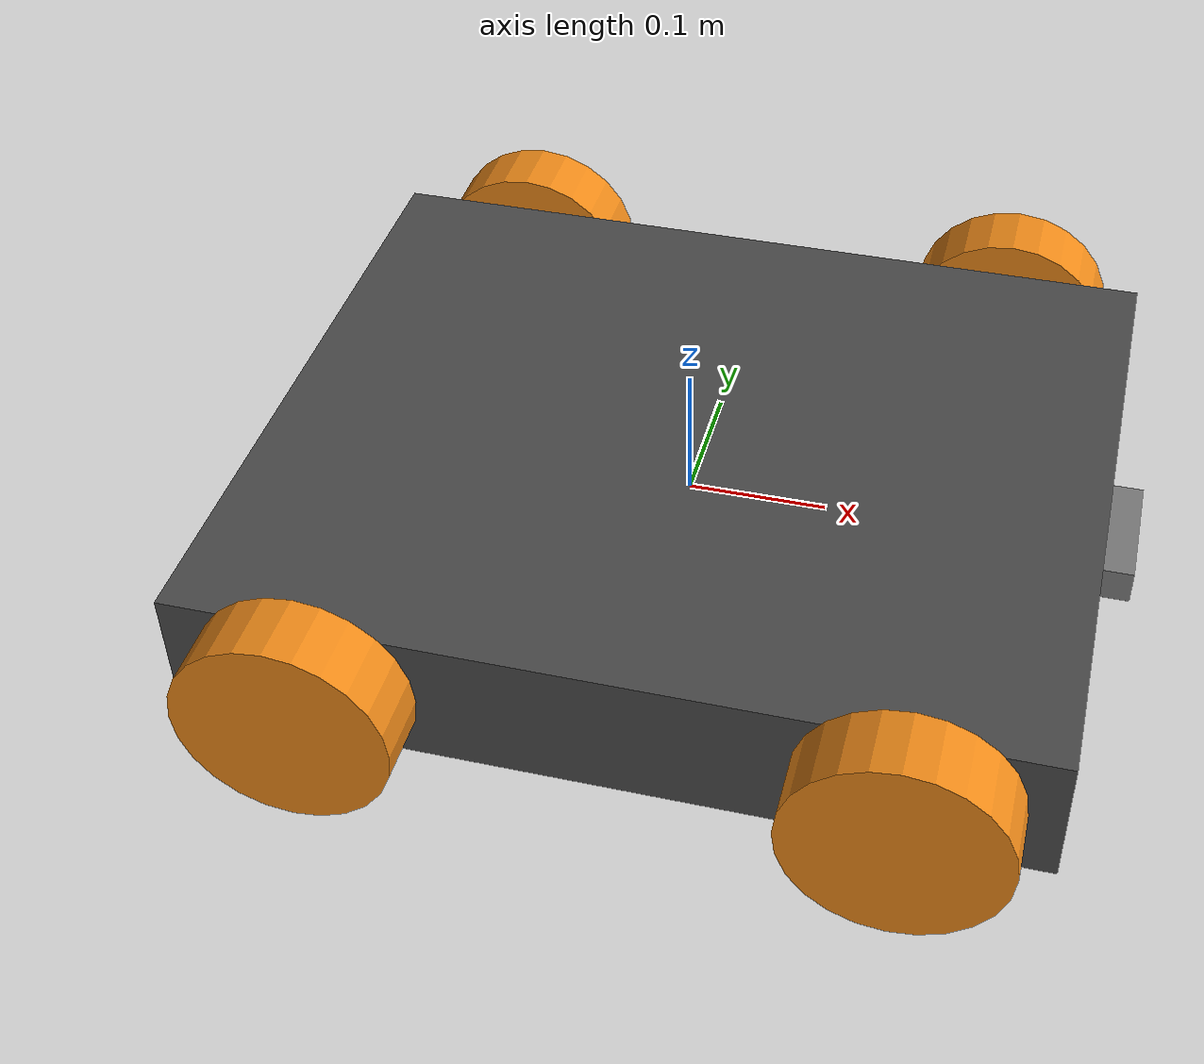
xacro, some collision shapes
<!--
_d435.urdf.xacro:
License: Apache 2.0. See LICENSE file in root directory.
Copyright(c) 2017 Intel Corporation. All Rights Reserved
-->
<?xml version='1.0'?>
<robot name="mobile_robot" xmlns:xacro="http://www.ros.org/wiki/xacro">
  <xacro:include filename="$(find test_mobile_robot)/urdf/mobile_robot.gazebo"/>
  <xacro:include filename="$(find test_mobile_robot)/urdf/common_properties.urdf.xacro"/>
  <xacro:include filename="$(find camera_simulator)/urdf/_d435.urdf.xacro"/>

  <xacro:arg name="gpu" default="false"/>
  <xacro:property name="gpu" value="$(arg gpu)" />

  <xacro:property name="M_PI" value="3.1415926535897932384626433832795028841971"/>

  <!-- Chassis Info -->
  <xacro:property name="chassis_mass" value="10"/>

  <xacro:property name="chassis_width" value="0.5"/>
  <xacro:property name="chassis_depth" value="0.6"/>
  <xacro:property name="chassis_height" value="0.1"/>

  <!-- Wheel Info -->
  <xacro:property name="wheel_mass" value="0.5"/>

  <xacro:property name="wheel_radius" value="0.076"/>
  <xacro:property name="wheel_length" value="0.050"/>
  <xacro:property name="joint_x" value="0.2"/>
  <xacro:property name="joint_y" value="0.275"/>

<!-- Camera Joint Info-->

  <xacro:property name="joint_x_cam" value="0.31"/>
  <xacro:property name="joint_y_cam" value="0"/>
  <xacro:property name="joint_z_cam" value="0.0"/>

  <!-- 1. Base Footprint-->

  <link name="base_footprint"/>

  <!--2. Base link-->

  <link name="base_link">
    <inertial>
      <origin xyz="0.0 0.0 0.0" rpy="0.0 0.0 0.0"/>

      <mass value="${chassis_mass}"/>
      <inertia ixx="10.0" ixy="0.0" ixz="0.0" iyy="10.0" iyz="0.0" izz="10.0"/>
    </inertial>

      <visual>
        <origin xyz="0.0 0.0 0.0" rpy="0.0 0.0 0.0"/>
        <geometry>
          <box size="${chassis_depth} ${chassis_width} ${chassis_height}"/>
        </geometry>
      </visual>

      <collision>
        <origin xyz="0.0 0.0 0.0" rpy="0.0 0.0 0.0"/>
        <geometry>
          <box size="${chassis_depth} ${chassis_width} ${chassis_height}"/>
        </geometry>
      </collision>

  </link>

  <joint name="base_joint" type="fixed">
    <origin xyz="0.0 0.0 0.0" rpy="0.0 0.0 0.0"/>
    <parent link="base_footprint"/>
    <child link="base_link"/>
    <origin xyz="0.0 0.0 0.05" rpy="0.0 0.0 0.0"/>
  </joint>

  <!-- 3. FL wheel -->

  <link name="fl_wheel">
    <inertial>
      <origin xyz="0.0 0.0 0.0" rpy="0.0 0.0 0.0"/>
      <mass value="${wheel_mass}"/>
      <inertia ixx="0.1" ixy="0.0" ixz="0.0" iyy="0.1" iyz="0.0" izz="0.1"/>
    </inertial>

    <visual>
      <origin xyz="0.0 0.0 0.0" rpy="0.0 0.0 0.0"/>
      <geometry>
        <cylinder radius="${wheel_radius}" length="${wheel_length}"/>
      </geometry>
    </visual>

    <collision>
      <origin xyz="0.0 0.0 0.0" rpy="0.0 0.0 0.0"/>
      <geometry>
        <cylinder radius="${wheel_radius}" length="${wheel_length}"/>
      </geometry>
    </collision>
  </link>

  <joint name="fl_joint" type="fixed">
    <origin xyz="${joint_x} ${-joint_y} 0.0" rpy="${M_PI/2} 0.0 0.0"/>
    <parent link="base_link"/>
    <child link="fl_wheel"/>
    <axis xyz="0.0 1.0 0.0"/>
  </joint>

  <!-- 4. FR wheel -->

  <link name="fr_wheel">
    <inertial>
      <origin xyz="0.0 0.0 0.0" rpy="0.0 0.0 0.0"/>
      <mass value="${wheel_mass}"/>
      <inertia ixx="0.1" ixy="0.0" ixz="0.0" iyy="0.1" iyz="0.0" izz="0.1"/>
    </inertial>

    <visual>
      <origin xyz="0.0 0.0 0.0" rpy="0.0 0.0 0.0"/>
      <geometry>
        <cylinder radius="${wheel_radius}" length="${wheel_length}"/>
      </geometry>
    </visual>

    <collision>
      <origin xyz="0.0 0.0 0.0" rpy="0.0 0.0 0.0"/>
      <geometry>
        <cylinder radius="${wheel_radius}" length="${wheel_length}"/>
      </geometry>
    </collision>
  </link>

  <joint name="fr_joint" type="fixed">
    <origin xyz="${joint_x} ${joint_y} 0.0" rpy="${M_PI/2} 0.0 0.0"/>
    <parent link="base_link"/>
    <child link="fr_wheel"/>
    <axis xyz="0.0 1.0 0.0"/>
  </joint>

  <!-- 5. BR wheel -->

  <link name="br_wheel">
    <inertial>
      <origin xyz="0.0 0.0 0.0" rpy="0.0 0.0 0.0"/>
      <mass value="${wheel_mass}"/>
      <inertia ixx="0.1" ixy="0.0" ixz="0.0" iyy="0.1" iyz="0.0" izz="0.1"/>
    </inertial>

    <visual>
      <origin xyz="0.0 0.0 0.0" rpy="0.0 0.0 0.0"/>
      <geometry>
        <cylinder radius="${wheel_radius}" length="${wheel_length}"/>
      </geometry>
    </visual>

    <collision>
      <origin xyz="0.0 0.0 0.0" rpy="0.0 0.0 0.0"/>
      <geometry>
        <cylinder radius="${wheel_radius}" length="${wheel_length}"/>
      </geometry>
    </collision>
  </link>

  <joint name="br_joint" type="fixed">
    <origin xyz="${-joint_x} ${joint_y} 0.0" rpy="${M_PI/2} 0.0 0.0"/>
    <parent link="base_link"/>
    <child link="br_wheel"/>
    <axis xyz="0.0 1.0 0.0"/>
  </joint>

  <!-- 6. BL wheel -->

  <link name="bl_wheel">
    <inertial>
      <origin xyz="0.0 0.0 0.0" rpy="0.0 0.0 0.0"/>
      <mass value="${wheel_mass}"/>
      <inertia ixx="0.1" ixy="0.0" ixz="0.0" iyy="0.1" iyz="0.0" izz="0.1"/>
    </inertial>

    <visual>
      <origin xyz="0.0 0.0 0.0" rpy="0.0 0.0 0.0"/>
      <geometry>
        <cylinder radius="${wheel_radius}" length="${wheel_length}"/>
      </geometry>
    </visual>

    <collision>
      <origin xyz="0.0 0.0 0.0" rpy="0.0 0.0 0.0"/>
      <geometry>
        <cylinder radius="${wheel_radius}" length="${wheel_length}"/>
      </geometry>
    </collision>
  </link>

  <joint name="bl_joint" type="fixed">
    <origin xyz="${-joint_x} ${-joint_y} 0.0" rpy="${M_PI/2} 0.0 0.0"/>
    <parent link="base_link"/>
    <child link="bl_wheel"/>
    <axis xyz="0.0 1.0 0.0"/>
  </joint>

  <xacro:sensor_d435 parent="base_link">
    <origin xyz="${joint_x_cam} ${joint_y_cam} ${joint_z_cam}" rpy="0.0 0.0 0.0"/>
  </xacro:sensor_d435>

</robot>

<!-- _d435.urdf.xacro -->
<robot name="sensor_d435" xmlns:xacro="http://ros.org/wiki/xacro">
  <!--File includes-->
  <xacro:include filename="$(find camera_simulator)/urdf/_d435.gazebo.xacro"/>
  <xacro:macro name="sensor_d435" params="name:=camera topics_ns:=camera parent *origin">
    <xacro:property name="M_PI" value="3.1415926535897931" />

    <!-- The following values are approximate, and the camera node
     publishing TF values with actual calibrated camera extrinsic values -->
    <xacro:property name="d435_cam_depth_to_left_ir_offset" value="0.0"/>
    <xacro:property name="d435_cam_depth_to_right_ir_offset" value="-0.050"/>
    <xacro:property name="d435_cam_depth_to_color_offset" value="0.015"/>

    <!-- The following values model the aluminum peripherial case for the
  	D435 camera, with the camera joint represented by the actual
  	peripherial camera tripod mount -->
    <xacro:property name="d435_cam_width" value="0.090"/>
    <xacro:property name="d435_cam_height" value="0.025"/>
    <xacro:property name="d435_cam_depth" value="0.02505"/>
    <xacro:property name="d435_cam_mount_from_center_offset" value="0.0149"/>

    <!-- The following offset is relative the the physical D435 camera peripherial
  	camera tripod mount -->
    <xacro:property name="d435_cam_depth_px" value="${d435_cam_mount_from_center_offset}"/>
    <xacro:property name="d435_cam_depth_py" value="0.0175"/>
    <xacro:property name="d435_cam_depth_pz" value="${d435_cam_height/2}"/>

    <material name="${name}_aluminum">
	  <color rgba="0.5 0.5 0.5 1"/>
    </material>

    <!-- camera body, with origin at bottom screw mount -->
    <joint name="${name}_joint" type="fixed">
      <xacro:insert_block name="origin" />
      <parent link="${parent}"/>
      <child link="${name}_bottom_screw_frame" />
    </joint>
    <link name="${name}_bottom_screw_frame"/>

    <joint name="${name}_link_joint" type="fixed">
      <origin xyz="0 ${d435_cam_depth_py} ${d435_cam_depth_pz}" rpy="0 0 0"/>
      <parent link="${name}_bottom_screw_frame"/>
      <child link="${name}_link" />
    </joint>

    <link name="${name}_link">
      <visual>
      <origin xyz="${d435_cam_mount_from_center_offset} ${-d435_cam_depth_py} 0" rpy="${M_PI/2} 0 ${M_PI/2}"/>
        <geometry>
          <mesh filename="package://realsense2_description/meshes/d435.dae" />
        </geometry>
        <material name="${name}_aluminum"/>
      </visual>
      <collision>
        <origin xyz="0 ${-d435_cam_depth_py} 0" rpy="0 0 0"/>
        <geometry>
        <box size="${d435_cam_depth} ${d435_cam_width} ${d435_cam_height}"/>
        </geometry>
      </collision>
      <inertial>
        <!-- The following are not reliable values, and should not be used for modeling -->
        <mass value="0.564" />
        <origin xyz="0 0 0" />
        <inertia ixx="0.003881243" ixy="0.0" ixz="0.0" iyy="0.000498940" iyz="0.0" izz="0.003879257" />
      </inertial>
    </link>

    <!-- camera depth joints and links -->
    <joint name="${name}_depth_joint" type="fixed">
      <origin xyz="0 0 0" rpy="0 0 0"/>
      <parent link="${name}_link"/>
      <child link="${name}_depth_frame" />
    </joint>
    <link name="${name}_depth_frame"/>

    <joint name="${name}_depth_optical_joint" type="fixed">
      <origin xyz="0 0 0" rpy="${-M_PI/2} 0 ${-M_PI/2}" />
      <parent link="${name}_depth_frame" />
      <child link="${name}_depth_optical_frame" />
    </joint>
    <link name="${name}_depth_optical_frame"/>

    <!-- camera left IR joints and links -->
    <joint name="${name}_left_ir_joint" type="fixed">
      <origin xyz="0 ${d435_cam_depth_to_left_ir_offset} 0" rpy="0 0 0" />
      <parent link="${name}_depth_frame" />
      <child link="${name}_left_ir_frame" />
    </joint>
    <link name="${name}_left_ir_frame"/>

    <joint name="${name}_left_ir_optical_joint" type="fixed">
      <origin xyz="0 0 0" rpy="${-M_PI/2} 0 ${-M_PI/2}" />
      <parent link="${name}_left_ir_frame" />
      <child link="${name}_left_ir_optical_frame" />
    </joint>
    <link name="${name}_left_ir_optical_frame"/>

    <!-- camera right IR joints and links -->
    <joint name="${name}_right_ir_joint" type="fixed">
      <origin xyz="0 ${d435_cam_depth_to_right_ir_offset} 0" rpy="0 0 0" />
      <parent link="${name}_depth_frame" />
      <child link="${name}_right_ir_frame" />
    </joint>
    <link name="${name}_right_ir_frame"/>

    <joint name="${name}_right_ir_optical_joint" type="fixed">
      <origin xyz="0 0 0" rpy="${-M_PI/2} 0 ${-M_PI/2}" />
      <parent link="${name}_right_ir_frame" />
      <child link="${name}_right_ir_optical_frame" />
    </joint>
    <link name="${name}_right_ir_optical_frame"/>

    <!-- camera color joints and links -->
    <joint name="${name}_color_joint" type="fixed">
      <origin xyz="0 ${d435_cam_depth_to_color_offset} 0" rpy="0 0 0" />
      <parent link="${name}_depth_frame" />
      <child link="${name}_color_frame" />
    </joint>
    <link name="${name}_color_frame"/>

    <joint name="${name}_color_optical_joint" type="fixed">
      <origin xyz="0 0 0" rpy="${-M_PI/2} 0 ${-M_PI/2}" />
      <parent link="${name}_color_frame" />
      <child link="${name}_color_optical_frame" />
    </joint>
    <link name="${name}_color_optical_frame"/>

    <!-- Realsense Gazebo Plugin -->
    <xacro:gazebo_d435 camera_name="${name}" reference_link="${name}_link" topics_ns="${topics_ns}" depth_optical_frame="${name}_depth_optical_frame" color_optical_frame="${name}_color_optical_frame" infrared1_optical_frame="${name}_left_ir_optical_frame" infrared2_optical_frame="${name}_right_ir_optical_frame"/>

  </xacro:macro>
</robot>
